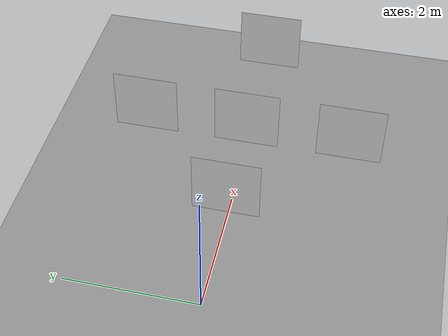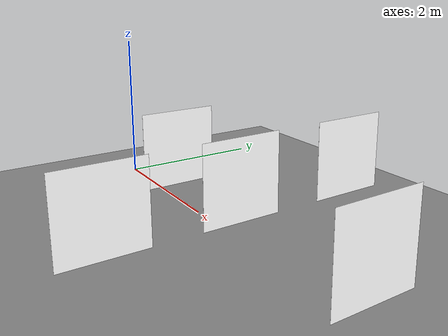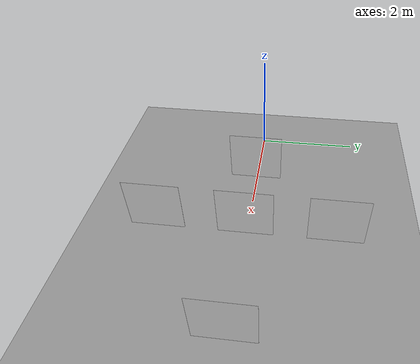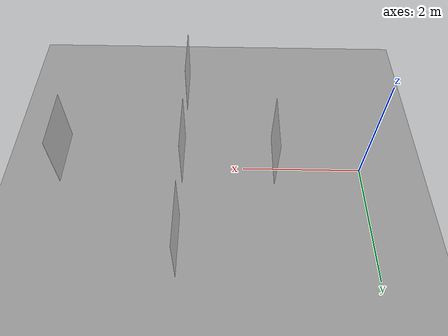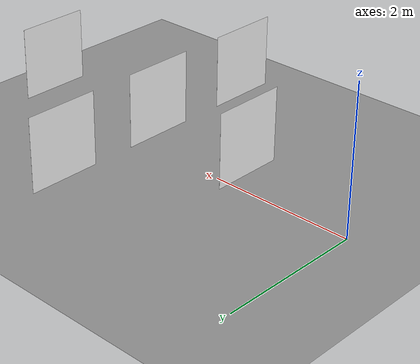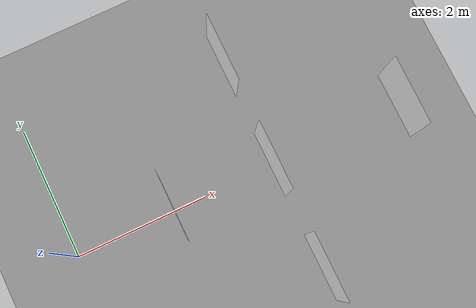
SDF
<?xml version="1.0"?>
<sdf version="1.8">
  <world name="empty">

    <plugin
      filename="gz-sim-physics-system"
      name="gz::sim::systems::Physics"/>

    <plugin
      filename="gz-sim-user-commands-system"
      name="gz::sim::systems::UserCommands"/>

    <plugin
      filename="gz-sim-scene-broadcaster-system"
      name="gz::sim::systems::SceneBroadcaster"/>

    <plugin
      filename="gz-sim-sensors-system"
      name="gz::sim::systems::Sensors">
      <render_engine>ogre2</render_engine>
    </plugin>

    <light type="directional" name="sun">
      <pose>0 0 10 0 0 0</pose>
      <diffuse>0.8 0.8 0.8 1</diffuse>
      <specular>0.2 0.2 0.2 1</specular>
      <direction>-0.4 0.2 -1</direction>
    </light>

    <model name="ground_plane">
      <static>true</static>
      <link name="link">
        <collision name="collision">
          <geometry>
            <plane>
              <normal>0 0 1</normal>
              <size>50 50</size>
            </plane>
          </geometry>
        </collision>

        <visual name="visual">
          <geometry>
            <plane>
              <normal>0 0 1</normal>
              <size>50 50</size>
            </plane>
          </geometry>
          <material>
            <ambient>0.55 0.55 0.55 1</ambient>
            <diffuse>0.55 0.55 0.55 1</diffuse>
          </material>
        </visual>
      </link>
    </model>

    <include>
      <uri>model://aruco_marker_0</uri>
      <name>aruco_marker_0</name>
      <pose>3.0 0.0 0.75 0 0 3.14159</pose>
    </include>

    <include>
      <uri>model://aruco_marker_1</uri>
      <name>aruco_marker_1</name>
      <pose>3.0 1.6 0.75 0 0 3.14159</pose>
    </include>

    <include>
      <uri>model://aruco_marker_2</uri>
      <name>aruco_marker_2</name>
      <pose>3.0 -1.6 0.75 0 0 3.14159</pose>
    </include>

    <include>
      <uri>model://aruco_marker_3</uri>
      <name>aruco_marker_3</name>
      <pose>5.0 0.0 0.75 0 0 3.14159</pose>
    </include>

    <include>
      <uri>model://aruco_marker_4</uri>
      <name>aruco_marker_4</name>
      <pose>1.5 0.0 0.75 0 0 3.14159</pose>
    </include>

  </world>
</sdf>

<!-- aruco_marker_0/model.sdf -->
<sdf version="1.8">
  <model name="aruco_marker_0">
    <static>true</static>
    <link name="link">
      <collision name="backing_collision">
        <pose>0 0 0 0 1.5708 0</pose>
        <geometry>
          <box>
            <size>0.03 1.1 1.1</size>
          </box>
        </geometry>
      </collision>
      <visual name="marker_visual">
        <pose>-0.02 0 0 0 1.5708 0</pose>
        <geometry>
          <plane>
            <normal>0 0 1</normal>
            <size>1.0 1.0</size>
          </plane>
        </geometry>
        <material>
          <ambient>1 1 1 1</ambient>
          <diffuse>1 1 1 1</diffuse>
          <specular>0 0 0 1</specular>
          <pbr>
            <metal>
              <albedo_map>model://aruco_marker_0/materials/textures/aruco_marker_0.png</albedo_map>
              <roughness>1.0</roughness>
              <metalness>0.0</metalness>
            </metal>
          </pbr>
        </material>
      </visual>
    </link>
  </model>
</sdf>

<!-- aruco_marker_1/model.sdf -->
<sdf version="1.8">
  <model name="aruco_marker_1">
    <static>true</static>
    <link name="link">
      <collision name="backing_collision">
        <pose>0 0 0 0 1.5708 0</pose>
        <geometry>
          <box>
            <size>0.03 1.1 1.1</size>
          </box>
        </geometry>
      </collision>
      <visual name="marker_visual">
        <pose>-0.02 0 0 0 1.5708 0</pose>
        <geometry>
          <plane>
            <normal>0 0 1</normal>
            <size>1.0 1.0</size>
          </plane>
        </geometry>
        <material>
          <ambient>1 1 1 1</ambient>
          <diffuse>1 1 1 1</diffuse>
          <specular>0 0 0 1</specular>
          <pbr>
            <metal>
              <albedo_map>model://aruco_marker_1/materials/textures/aruco_marker_1.png</albedo_map>
              <roughness>1.0</roughness>
              <metalness>0.0</metalness>
            </metal>
          </pbr>
        </material>
      </visual>
    </link>
  </model>
</sdf>

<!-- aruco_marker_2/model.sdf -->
<sdf version="1.8">
  <model name="aruco_marker_2">
    <static>true</static>
    <link name="link">
      <collision name="backing_collision">
        <pose>0 0 0 0 1.5708 0</pose>
        <geometry>
          <box>
            <size>0.03 1.1 1.1</size>
          </box>
        </geometry>
      </collision>
      <visual name="marker_visual">
        <pose>-0.02 0 0 0 1.5708 0</pose>
        <geometry>
          <plane>
            <normal>0 0 1</normal>
            <size>1.0 1.0</size>
          </plane>
        </geometry>
        <material>
          <ambient>1 1 1 1</ambient>
          <diffuse>1 1 1 1</diffuse>
          <specular>0 0 0 1</specular>
          <pbr>
            <metal>
              <albedo_map>model://aruco_marker_2/materials/textures/aruco_marker_2.png</albedo_map>
              <roughness>1.0</roughness>
              <metalness>0.0</metalness>
            </metal>
          </pbr>
        </material>
      </visual>
    </link>
  </model>
</sdf>

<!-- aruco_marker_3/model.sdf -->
<sdf version="1.8">
  <model name="aruco_marker_3">
    <static>true</static>
    <link name="link">
      <collision name="backing_collision">
        <pose>0 0 0 0 1.5708 0</pose>
        <geometry>
          <box>
            <size>0.03 1.1 1.1</size>
          </box>
        </geometry>
      </collision>
      <visual name="marker_visual">
        <pose>-0.02 0 0 0 1.5708 0</pose>
        <geometry>
          <plane>
            <normal>0 0 1</normal>
            <size>1.0 1.0</size>
          </plane>
        </geometry>
        <material>
          <ambient>1 1 1 1</ambient>
          <diffuse>1 1 1 1</diffuse>
          <specular>0 0 0 1</specular>
          <pbr>
            <metal>
              <albedo_map>model://aruco_marker_3/materials/textures/aruco_marker_3.png</albedo_map>
              <roughness>1.0</roughness>
              <metalness>0.0</metalness>
            </metal>
          </pbr>
        </material>
      </visual>
    </link>
  </model>
</sdf>

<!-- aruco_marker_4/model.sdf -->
<sdf version="1.8">
  <model name="aruco_marker_4">
    <static>true</static>
    <link name="link">
      <collision name="backing_collision">
        <pose>0 0 0 0 1.5708 0</pose>
        <geometry>
          <box>
            <size>0.03 1.1 1.1</size>
          </box>
        </geometry>
      </collision>
      <visual name="marker_visual">
        <pose>-0.02 0 0 0 1.5708 0</pose>
        <geometry>
          <plane>
            <normal>0 0 1</normal>
            <size>1.0 1.0</size>
          </plane>
        </geometry>
        <material>
          <ambient>1 1 1 1</ambient>
          <diffuse>1 1 1 1</diffuse>
          <specular>0 0 0 1</specular>
          <pbr>
            <metal>
              <albedo_map>model://aruco_marker_4/materials/textures/aruco_marker_4.png</albedo_map>
              <roughness>1.0</roughness>
              <metalness>0.0</metalness>
            </metal>
          </pbr>
        </material>
      </visual>
    </link>
  </model>
</sdf>
